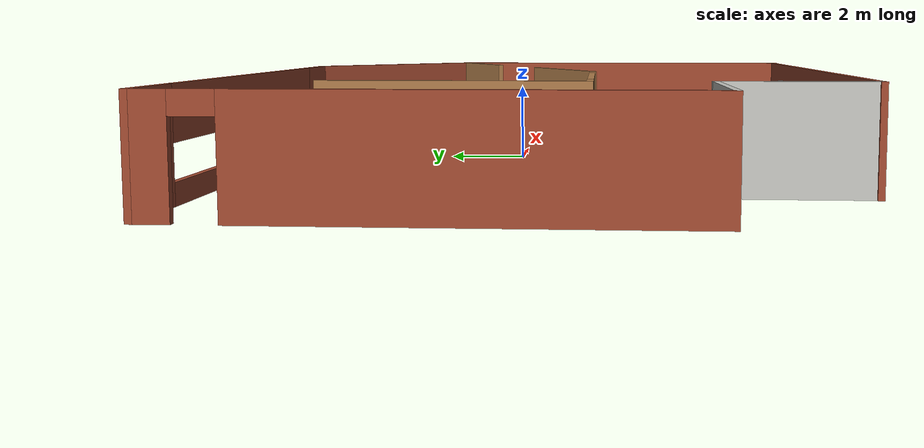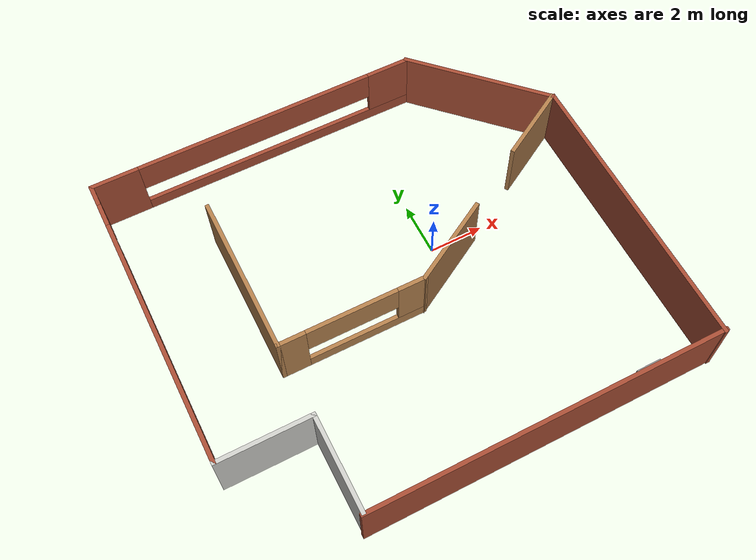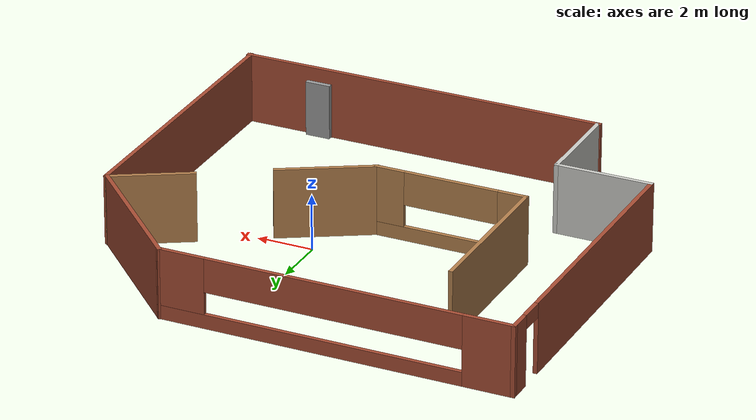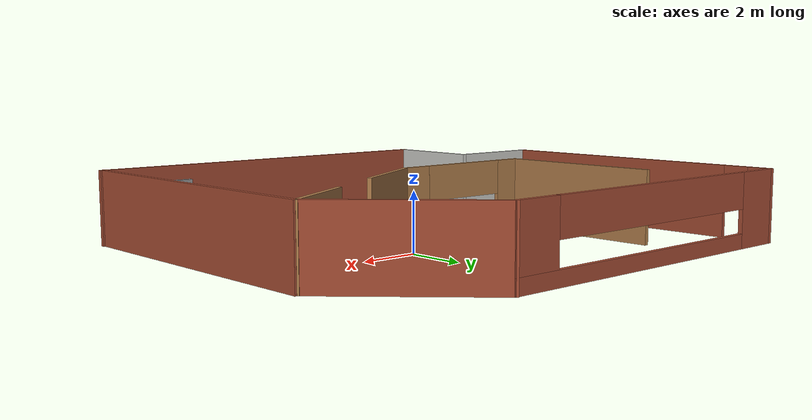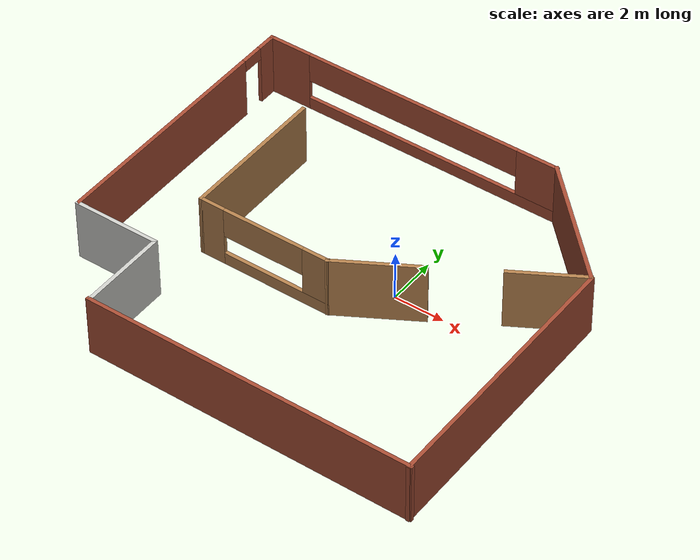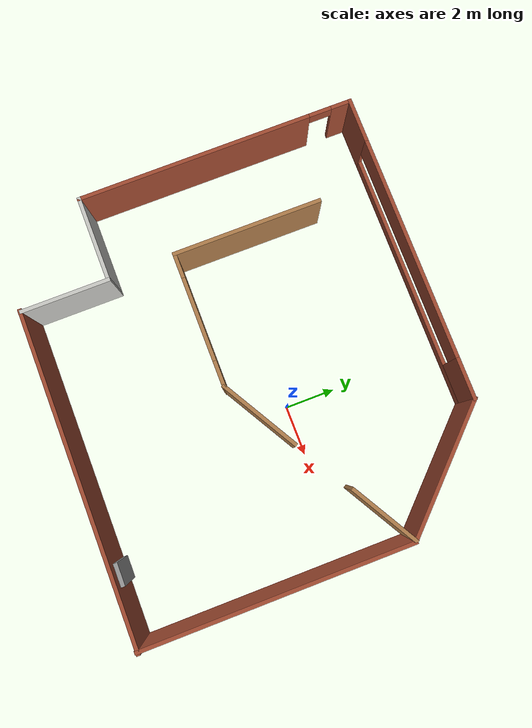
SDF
<?xml version='1.0'?>
<sdf version='1.6'>
  <model name='MyBuilding'>
    <pose frame=''>-1.85723 -0.831204 0 0 -0 0</pose>
    <link name='Door_0'>
      <collision name='Door_0_Collision'>
        <geometry>
          <box>
            <size>0.9 0.17 2</size>
          </box>
        </geometry>
        <pose frame=''>0 0 1 0 -0 0</pose>
      </collision>
      <visual name='Door_0_Visual'>
        <pose frame=''>0 0 1 0 -0 0</pose>
        <geometry>
          <box>
            <size>0.9 0.17 2</size>
          </box>
        </geometry>
        <material>
          <script>
            <uri>file://media/materials/scripts/gazebo.material</uri>
            <name>Gazebo/Grey</name>
          </script>
        </material>
      </visual>
      <pose frame=''>5.4712 -7.12361 0 0 -0 0</pose>
    </link>
    <link name='Wall_21'>
      <pose frame=''>-8.20187 1.7244 0 0 0 -1.5708</pose>
      <visual name='Wall_21_Visual_0'>
        <pose frame=''>-5.17619 0 1.25 0 -0 0</pose>
        <geometry>
          <box>
            <size>0.867381 0.15 2.5</size>
          </box>
        </geometry>
        <material>
          <script>
            <uri>file://media/materials/scripts/gazebo.material</uri>
            <name>Gazebo/Bricks</name>
          </script>
          <ambient>1 1 1 1</ambient>
        </material>
        <meta>
          <layer>0</layer>
        </meta>
      </visual>
      <collision name='Wall_21_Collision_0'>
        <geometry>
          <box>
            <size>0.867381 0.15 2.5</size>
          </box>
        </geometry>
        <pose frame=''>-5.17619 0 1.25 0 -0 0</pose>
      </collision>
      <visual name='Wall_21_Visual_1'>
        <pose frame=''>0.883691 0 1.25 0 -0 0</pose>
        <geometry>
          <box>
            <size>9.45237 0.15 2.5</size>
          </box>
        </geometry>
        <material>
          <script>
            <uri>file://media/materials/scripts/gazebo.material</uri>
            <name>Gazebo/Bricks</name>
          </script>
          <ambient>1 1 1 1</ambient>
        </material>
        <meta>
          <layer>0</layer>
        </meta>
      </visual>
      <collision name='Wall_21_Collision_1'>
        <geometry>
          <box>
            <size>9.45237 0.15 2.5</size>
          </box>
        </geometry>
        <pose frame=''>0.883691 0 1.25 0 -0 0</pose>
      </collision>
      <visual name='Wall_21_Visual_2'>
        <pose frame=''>-4.2925 0 2.25 0 -0 0</pose>
        <geometry>
          <box>
            <size>0.9 0.15 0.5</size>
          </box>
        </geometry>
        <material>
          <script>
            <uri>file://media/materials/scripts/gazebo.material</uri>
            <name>Gazebo/Bricks</name>
          </script>
          <ambient>1 1 1 1</ambient>
        </material>
        <meta>
          <layer>0</layer>
        </meta>
      </visual>
      <collision name='Wall_21_Collision_2'>
        <geometry>
          <box>
            <size>0.9 0.15 0.5</size>
          </box>
        </geometry>
        <pose frame=''>-4.2925 0 2.25 0 -0 0</pose>
      </collision>
    </link>
    <link name='Wall_23'>
      <collision name='Wall_23_Collision'>
        <geometry>
          <box>
            <size>3.5 0.15 2.5</size>
          </box>
        </geometry>
        <pose frame=''>0 0 1.25 0 -0 0</pose>
      </collision>
      <visual name='Wall_23_Visual'>
        <pose frame=''>0 0 1.25 0 -0 0</pose>
        <geometry>
          <box>
            <size>3.5 0.15 2.5</size>
          </box>
        </geometry>
        <material>
          <script>
            <uri>file://media/materials/scripts/gazebo.material</uri>
            <name>Gazebo/CeilingTiled</name>
          </script>
          <ambient>1 1 1 1</ambient>
        </material>
        <meta>
          <layer>0</layer>
        </meta>
      </visual>
      <pose frame=''>-6.52687 -3.81048 0 0 -0 0</pose>
    </link>
    <link name='Wall_24'>
      <collision name='Wall_24_Collision'>
        <geometry>
          <box>
            <size>3.57383 0.15 2.5</size>
          </box>
        </geometry>
        <pose frame=''>0 0 1.25 0 -0 0</pose>
      </collision>
      <visual name='Wall_24_Visual'>
        <pose frame=''>0 0 1.25 0 -0 0</pose>
        <geometry>
          <box>
            <size>3.57383 0.15 2.5</size>
          </box>
        </geometry>
        <material>
          <script>
            <uri>file://media/materials/scripts/gazebo.material</uri>
            <name>Gazebo/CeilingTiled</name>
          </script>
          <ambient>1 1 1 1</ambient>
        </material>
        <meta>
          <layer>0</layer>
        </meta>
      </visual>
      <pose frame=''>-4.85187 -5.52239 0 0 0 -1.5708</pose>
    </link>
    <link name='Wall_25'>
      <collision name='Wall_25_Collision'>
        <geometry>
          <box>
            <size>13.25 0.15 2.5</size>
          </box>
        </geometry>
        <pose frame=''>0 0 1.25 0 -0 0</pose>
      </collision>
      <visual name='Wall_25_Visual'>
        <pose frame=''>0 0 1.25 0 -0 0</pose>
        <geometry>
          <box>
            <size>13.25 0.15 2.5</size>
          </box>
        </geometry>
        <material>
          <script>
            <uri>file://media/materials/scripts/gazebo.material</uri>
            <name>Gazebo/Bricks</name>
          </script>
          <ambient>0.435294 0.796078 0.67451 1</ambient>
        </material>
        <meta>
          <layer>0</layer>
        </meta>
      </visual>
      <pose frame=''>1.65187 -7.28057 0 0 -0 0</pose>
    </link>
    <link name='Wall_28'>
      <collision name='Wall_28_Collision'>
        <geometry>
          <box>
            <size>10.75 0.15 2.5</size>
          </box>
        </geometry>
        <pose frame=''>0 0 1.25 0 -0 0</pose>
      </collision>
      <visual name='Wall_28_Visual'>
        <pose frame=''>0 0 1.25 0 -0 0</pose>
        <geometry>
          <box>
            <size>10.75 0.15 2.5</size>
          </box>
        </geometry>
        <material>
          <script>
            <uri>file://media/materials/scripts/gazebo.material</uri>
            <name>Gazebo/Bricks</name>
          </script>
          <ambient>1 1 1 1</ambient>
        </material>
        <meta>
          <layer>0</layer>
        </meta>
      </visual>
      <pose frame=''>8.14813 -2.01048 0 0 0 -1.5708</pose>
    </link>
    <link name='Wall_30'>
      <collision name='Wall_30_Collision'>
        <geometry>
          <box>
            <size>5.75 0.15 2.5</size>
          </box>
        </geometry>
        <pose frame=''>0 0 1.25 0 -0 0</pose>
      </collision>
      <visual name='Wall_30_Visual'>
        <pose frame=''>0 0 1.25 0 -0 0</pose>
        <geometry>
          <box>
            <size>5.75 0.15 2.5</size>
          </box>
        </geometry>
        <material>
          <script>
            <uri>file://media/materials/scripts/gazebo.material</uri>
            <name>Gazebo/Bricks</name>
          </script>
          <ambient>1 1 1 1</ambient>
        </material>
        <meta>
          <layer>0</layer>
        </meta>
      </visual>
      <pose frame=''>6.12148 5.29952 0 0 0 -0.785398</pose>
    </link>
    <link name='Wall_32'>
      <pose frame=''>-2.02687 7.25927 0 0 -0 0</pose>
      <visual name='Wall_32_Visual_0'>
        <pose frame=''>-5.34821 0 1.25 0 -0 0</pose>
        <geometry>
          <box>
            <size>1.80358 0.15 2.5</size>
          </box>
        </geometry>
        <material>
          <script>
            <uri>file://media/materials/scripts/gazebo.material</uri>
            <name>Gazebo/Bricks</name>
          </script>
          <ambient>0.996078 0.47451 0.0196078 1</ambient>
        </material>
        <meta>
          <layer>0</layer>
        </meta>
      </visual>
      <collision name='Wall_32_Collision_0'>
        <geometry>
          <box>
            <size>1.80358 0.15 2.5</size>
          </box>
        </geometry>
        <pose frame=''>-5.34821 0 1.25 0 -0 0</pose>
      </collision>
      <visual name='Wall_32_Visual_1'>
        <pose frame=''>0.901792 0 0.25 0 -0 0</pose>
        <geometry>
          <box>
            <size>10.6964 0.15 0.5</size>
          </box>
        </geometry>
        <material>
          <script>
            <uri>file://media/materials/scripts/gazebo.material</uri>
            <name>Gazebo/Bricks</name>
          </script>
          <ambient>0.996078 0.47451 0.0196078 1</ambient>
        </material>
        <meta>
          <layer>0</layer>
        </meta>
      </visual>
      <collision name='Wall_32_Collision_1'>
        <geometry>
          <box>
            <size>10.6964 0.15 0.5</size>
          </box>
        </geometry>
        <pose frame=''>0.901792 0 0.25 0 -0 0</pose>
      </collision>
      <visual name='Wall_32_Visual_2'>
        <pose frame=''>5.39822 0 1.5 0 -0 0</pose>
        <geometry>
          <box>
            <size>1.70355 0.15 2</size>
          </box>
        </geometry>
        <material>
          <script>
            <uri>file://media/materials/scripts/gazebo.material</uri>
            <name>Gazebo/Bricks</name>
          </script>
          <ambient>0.996078 0.47451 0.0196078 1</ambient>
        </material>
        <meta>
          <layer>0</layer>
        </meta>
      </visual>
      <collision name='Wall_32_Collision_2'>
        <geometry>
          <box>
            <size>1.70355 0.15 2</size>
          </box>
        </geometry>
        <pose frame=''>5.39822 0 1.5 0 -0 0</pose>
      </collision>
      <visual name='Wall_32_Visual_3'>
        <pose frame=''>0.050014 0 1.9 0 -0 0</pose>
        <geometry>
          <box>
            <size>8.99286 0.15 1.2</size>
          </box>
        </geometry>
        <material>
          <script>
            <uri>file://media/materials/scripts/gazebo.material</uri>
            <name>Gazebo/Bricks</name>
          </script>
          <ambient>0.996078 0.47451 0.0196078 1</ambient>
        </material>
        <meta>
          <layer>0</layer>
        </meta>
      </visual>
      <collision name='Wall_32_Collision_3'>
        <geometry>
          <box>
            <size>8.99286 0.15 1.2</size>
          </box>
        </geometry>
        <pose frame=''>0.050014 0 1.9 0 -0 0</pose>
      </collision>
    </link>
    <link name='Wall_34'>
      <collision name='Wall_34_Collision'>
        <geometry>
          <box>
            <size>6 0.15 2.5</size>
          </box>
        </geometry>
        <pose frame=''>0 0 1.25 0 -0 0</pose>
      </collision>
      <visual name='Wall_34_Visual'>
        <pose frame=''>0 0 1.25 0 -0 0</pose>
        <geometry>
          <box>
            <size>6 0.15 2.5</size>
          </box>
        </geometry>
        <material>
          <script>
            <uri>file://media/materials/scripts/gazebo.material</uri>
            <name>Gazebo/Wood</name>
          </script>
          <ambient>1 1 1 1</ambient>
        </material>
        <meta>
          <layer>0</layer>
        </meta>
      </visual>
      <pose frame=''>-4.90288 1.76188 0 0 0 -1.5708</pose>
    </link>
    <link name='Wall_35'>
      <pose frame=''>-2.22788 -1.16312 0 0 -0 0</pose>
      <visual name='Wall_35_Visual_0'>
        <pose frame=''>-2.2209 0 1.25 0 -0 0</pose>
        <geometry>
          <box>
            <size>1.05821 0.15 2.5</size>
          </box>
        </geometry>
        <material>
          <script>
            <uri>file://media/materials/scripts/gazebo.material</uri>
            <name>Gazebo/Wood</name>
          </script>
          <ambient>1 1 1 1</ambient>
        </material>
        <meta>
          <layer>0</layer>
        </meta>
      </visual>
      <collision name='Wall_35_Collision_0'>
        <geometry>
          <box>
            <size>1.05821 0.15 2.5</size>
          </box>
        </geometry>
        <pose frame=''>-2.2209 0 1.25 0 -0 0</pose>
      </collision>
      <visual name='Wall_35_Visual_1'>
        <pose frame=''>0.529105 0 0.25 0 -0 0</pose>
        <geometry>
          <box>
            <size>4.44179 0.15 0.5</size>
          </box>
        </geometry>
        <material>
          <script>
            <uri>file://media/materials/scripts/gazebo.material</uri>
            <name>Gazebo/Wood</name>
          </script>
          <ambient>1 1 1 1</ambient>
        </material>
        <meta>
          <layer>0</layer>
        </meta>
      </visual>
      <collision name='Wall_35_Collision_1'>
        <geometry>
          <box>
            <size>4.44179 0.15 0.5</size>
          </box>
        </geometry>
        <pose frame=''>0.529105 0 0.25 0 -0 0</pose>
      </collision>
      <visual name='Wall_35_Visual_2'>
        <pose frame=''>2.20592 0 1.5 0 -0 0</pose>
        <geometry>
          <box>
            <size>1.08817 0.15 2</size>
          </box>
        </geometry>
        <material>
          <script>
            <uri>file://media/materials/scripts/gazebo.material</uri>
            <name>Gazebo/Wood</name>
          </script>
          <ambient>1 1 1 1</ambient>
        </material>
        <meta>
          <layer>0</layer>
        </meta>
      </visual>
      <collision name='Wall_35_Collision_2'>
        <geometry>
          <box>
            <size>1.08817 0.15 2</size>
          </box>
        </geometry>
        <pose frame=''>2.20592 0 1.5 0 -0 0</pose>
      </collision>
      <visual name='Wall_35_Visual_3'>
        <pose frame=''>-0.01498 0 1.9 0 -0 0</pose>
        <geometry>
          <box>
            <size>3.35362 0.15 1.2</size>
          </box>
        </geometry>
        <material>
          <script>
            <uri>file://media/materials/scripts/gazebo.material</uri>
            <name>Gazebo/Wood</name>
          </script>
          <ambient>1 1 1 1</ambient>
        </material>
        <meta>
          <layer>0</layer>
        </meta>
      </visual>
      <collision name='Wall_35_Collision_3'>
        <geometry>
          <box>
            <size>3.35362 0.15 1.2</size>
          </box>
        </geometry>
        <pose frame=''>-0.01498 0 1.9 0 -0 0</pose>
      </collision>
    </link>
    <link name='Wall_36'>
      <collision name='Wall_36_Collision'>
        <geometry>
          <box>
            <size>3.5 0.15 2.5</size>
          </box>
        </geometry>
        <pose frame=''>0 0 1.25 0 -0 0</pose>
      </collision>
      <visual name='Wall_36_Visual'>
        <pose frame=''>0 0 1.25 0 -0 0</pose>
        <geometry>
          <box>
            <size>3.5 0.15 2.5</size>
          </box>
        </geometry>
        <material>
          <script>
            <uri>file://media/materials/scripts/gazebo.material</uri>
            <name>Gazebo/Wood</name>
          </script>
          <ambient>1 1 1 1</ambient>
        </material>
        <meta>
          <layer>0</layer>
        </meta>
      </visual>
      <pose frame=''>1.89772 -0.325617 0 0 -0 0.523599</pose>
    </link>
    <link name='Wall_38'>
      <collision name='Wall_38_Collision'>
        <geometry>
          <box>
            <size>3 0.15 2.5</size>
          </box>
        </geometry>
        <pose frame=''>0 0 1.25 0 -0 0</pose>
      </collision>
      <visual name='Wall_38_Visual'>
        <pose frame=''>0 0 1.25 0 -0 0</pose>
        <geometry>
          <box>
            <size>3 0.15 2.5</size>
          </box>
        </geometry>
        <material>
          <script>
            <uri>file://media/materials/scripts/gazebo.material</uri>
            <name>Gazebo/Wood</name>
          </script>
          <ambient>1 1 1 1</ambient>
        </material>
        <meta>
          <layer>0</layer>
        </meta>
      </visual>
      <pose frame=''>6.8673 2.60712 0 0 0 -2.61799</pose>
    </link>
    <static>1</static>
  </model>
</sdf>
